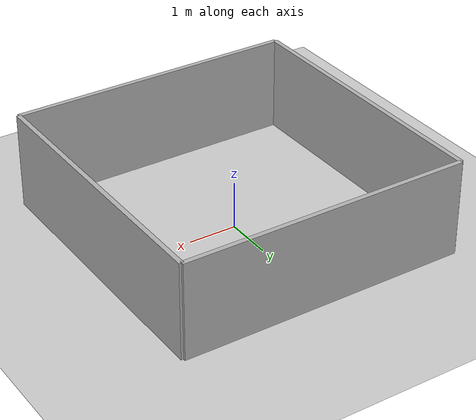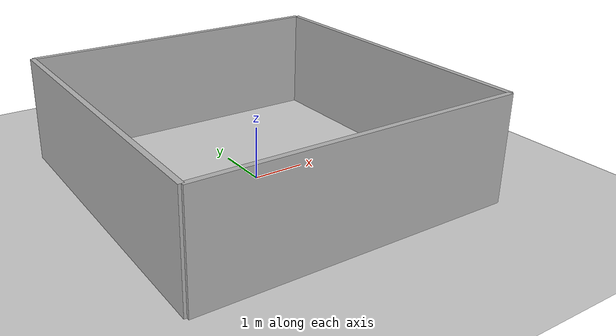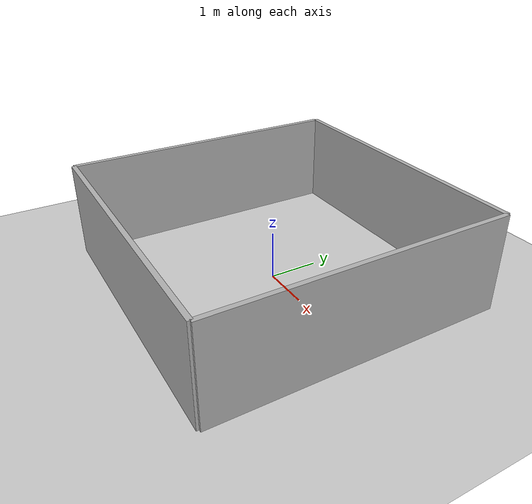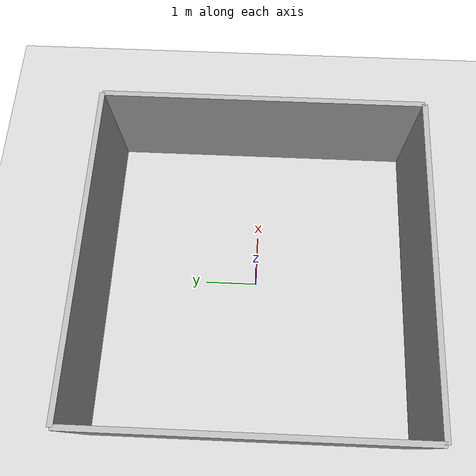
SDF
<?xml version="1.0" ?>
<sdf version="1.9">
  <world name="small_room">

    <physics name="physics" type="ode">
      <max_step_size>0.001</max_step_size>
      <real_time_factor>1.0</real_time_factor>
    </physics>

    <plugin
      filename="gz-sim-physics-system"
      name="gz::sim::systems::Physics"/>
    <plugin
      filename="gz-sim-user-commands-system"
      name="gz::sim::systems::UserCommands"/>
    <plugin
      filename="gz-sim-scene-broadcaster-system"
      name="gz::sim::systems::SceneBroadcaster"/>

    <light type="directional" name="sun">
      <cast_shadows>true</cast_shadows>
      <pose>0 0 10 0 0 0</pose>
      <diffuse>0.8 0.8 0.8 1</diffuse>
      <specular>0.2 0.2 0.2 1</specular>
      <attenuation>
        <range>1000</range>
        <constant>0.9</constant>
        <linear>0.01</linear>
        <quadratic>0.001</quadratic>
      </attenuation>
      <direction>-0.5 0.1 -0.9</direction>
    </light>

    <model name="ground_plane">
      <static>true</static>
      <link name="link">
        <collision name="collision">
          <geometry>
            <plane>
              <normal>0 0 1</normal>
              <size>20 20</size>
            </plane>
          </geometry>
        </collision>
        <visual name="visual">
          <geometry>
            <plane>
              <normal>0 0 1</normal>
              <size>20 20</size>
            </plane>
          </geometry>
          <material>
            <ambient>0.8 0.8 0.8 1</ambient>
            <diffuse>0.8 0.8 0.8 1</diffuse>
          </material>
        </visual>
      </link>
    </model>

    <!-- back wall -->
    <model name="wall_back">
      <static>true</static>
      <pose>0 3 1 0 0 0</pose>
      <link name="link">
        <collision name="collision">
          <geometry>
            <box>
              <size>6 0.1 2</size>
            </box>
          </geometry>
        </collision>
        <visual name="visual">
          <geometry>
            <box>
              <size>6 0.1 2</size>
            </box>
          </geometry>
          <material>
            <ambient>0.7 0.7 0.7 1</ambient>
            <diffuse>0.7 0.7 0.7 1</diffuse>
          </material>
        </visual>
      </link>
    </model>

    <!-- front wall -->
    <model name="wall_front">
      <static>true</static>
      <pose>0 -3 1 0 0 0</pose>
      <link name="link">
        <collision name="collision">
          <geometry>
            <box>
              <size>6 0.1 2</size>
            </box>
          </geometry>
        </collision>
        <visual name="visual">
          <geometry>
            <box>
              <size>6 0.1 2</size>
            </box>
          </geometry>
          <material>
            <ambient>0.7 0.7 0.7 1</ambient>
            <diffuse>0.7 0.7 0.7 1</diffuse>
          </material>
        </visual>
      </link>
    </model>

    <!-- left wall -->
    <model name="wall_left">
      <static>true</static>
      <pose>-3 0 1 0 0 0</pose>
      <link name="link">
        <collision name="collision">
          <geometry>
            <box>
              <size>0.1 6 2</size>
            </box>
          </geometry>
        </collision>
        <visual name="visual">
          <geometry>
            <box>
              <size>0.1 6 2</size>
            </box>
          </geometry>
          <material>
            <ambient>0.7 0.7 0.7 1</ambient>
            <diffuse>0.7 0.7 0.7 1</diffuse>
          </material>
        </visual>
      </link>
    </model>

    <!-- right wall -->
    <model name="wall_right">
      <static>true</static>
      <pose>3 0 1 0 0 0</pose>
      <link name="link">
        <collision name="collision">
          <geometry>
            <box>
              <size>0.1 6 2</size>
            </box>
          </geometry>
        </collision>
        <visual name="visual">
          <geometry>
            <box>
              <size>0.1 6 2</size>
            </box>
          </geometry>
          <material>
            <ambient>0.7 0.7 0.7 1</ambient>
            <diffuse>0.7 0.7 0.7 1</diffuse>
          </material>
        </visual>
      </link>
    </model>

  </world>
</sdf>
